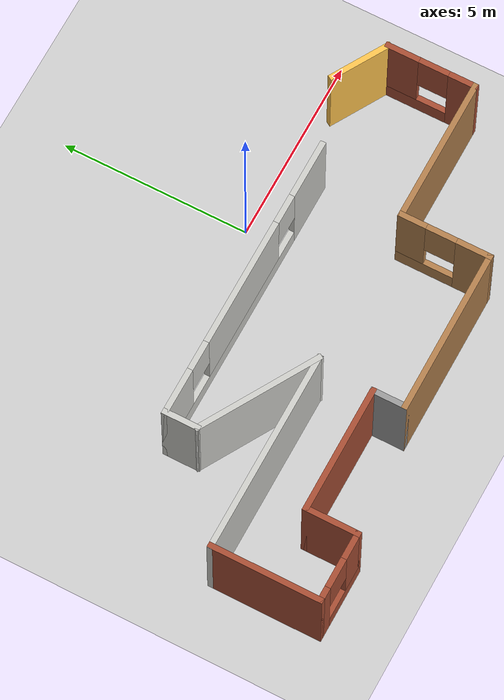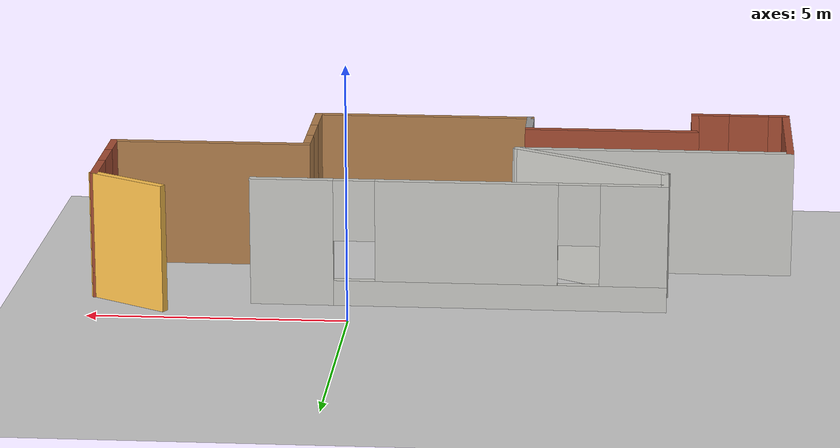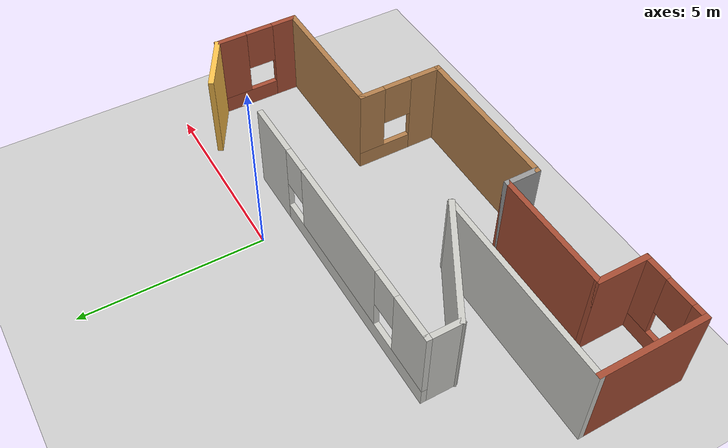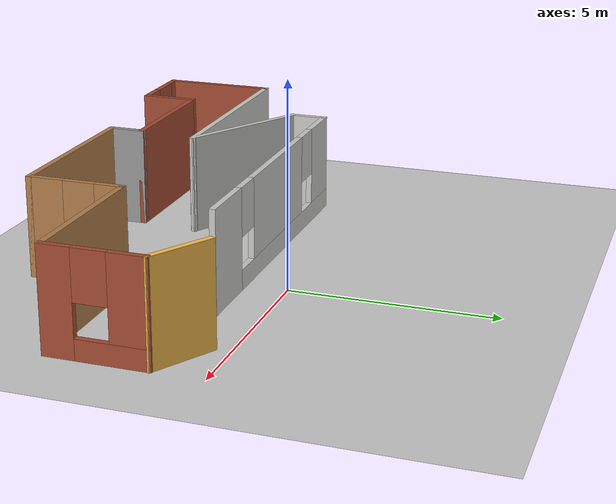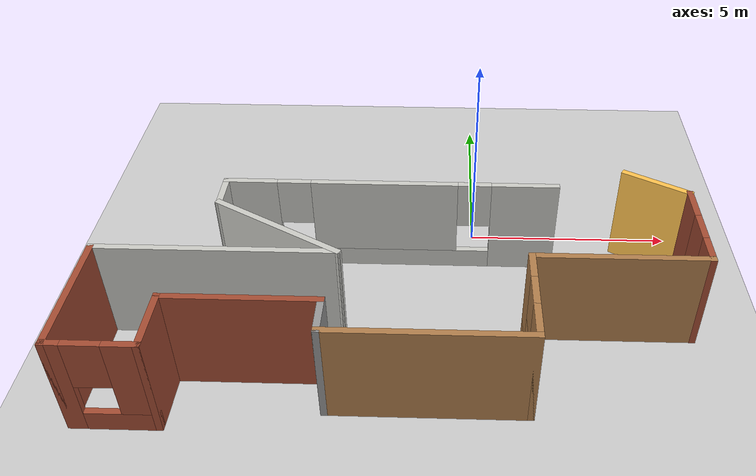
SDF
<sdf version="1.6">
 <world name="default">
  <light name="sun" type="directional">
   <pose>0 0 10 0 -0 0</pose>
   <diffuse>0.8 0.8 0.8 1</diffuse>
   <specular>0.2 0.2 0.2 1</specular>
   <attenuation>
    <range>1000</range>
    <constant>0.9</constant>
    <linear>0.01</linear>
    <quadratic>0.001</quadratic>
   </attenuation>
   <direction>-0.5 0.1 -0.9</direction>
  </light>
  <model name="ground_plane">
   <static>1</static>
   <link name="link">
    <collision name="collision">
     <geometry><plane><normal>0 0 1</normal><size>100 100</size></plane></geometry>
     <surface>
      <contact><collide_bitmask>65535</collide_bitmask></contact>
      <friction><ode><mu>100</mu><mu2>50</mu2></ode></friction>
     </surface>
    </collision>
    <visual name="visual">
     <cast_shadows>0</cast_shadows>
     <geometry><plane><normal>0 0 1</normal><size>100 100</size></plane></geometry>
     <material>
      <script><uri>file://media/materials/scripts/gazebo.material</uri><name>Gazebo/Grey</name></script>
     </material>
    </visual>
   </link>
  </model>
  <gravity>0 0 -9.8</gravity>
  <magnetic_field>6e-06 2.3e-05 -4.2e-05</magnetic_field>
  <atmosphere type="adiabatic"/>
  <physics name="default_physics" default="0" type="ode">
   <max_step_size>0.001</max_step_size>
   <real_time_factor>1</real_time_factor>
   <real_time_update_rate>1000</real_time_update_rate>
  </physics>
  <scene><ambient>0.4 0.4 0.4 1</ambient><background>0.7 0.7 0.7 1</background><shadows>1</shadows></scene>
  <spherical_coordinates>
   <surface_model>EARTH_WGS84</surface_model>
   <latitude_deg>0</latitude_deg>
   <longitude_deg>0</longitude_deg>
   <elevation>0</elevation>
   <heading_deg>0</heading_deg>
  </spherical_coordinates>
  <model name="tore.world">
   <pose>-1.69459 -3.41827 0 0 -0 0</pose>
   <link name="Wall_10">
    <collision name="Wall_10_Collision">
     <geometry><box><size>1.5 0.15 2.5</size></box></geometry>
     <pose>0 0 1.25 0 -0 0</pose>
    </collision>
    <visual name="Wall_10_Visual">
     <pose>0 0 1.25 0 -0 0</pose>
     <geometry><box><size>1.5 0.15 2.5</size></box></geometry>
     <material>
      <script><uri>file://media/materials/scripts/gazebo.material</uri><name>Gazebo/Bricks</name></script>
      <ambient>0.435294 0.796078 0.67451 1</ambient>
     </material>
     <meta><layer>0</layer></meta>
    </visual>
    <pose>-4.86373 -2.33873 0 0 -0 1.5708</pose>
   </link>
   <link name="Wall_11">
    <collision name="Wall_11_Collision">
     <geometry><box><size>3.5 0.15 2.5</size></box></geometry>
     <pose>0 0 1.25 0 -0 0</pose>
    </collision>
    <visual name="Wall_11_Visual">
     <pose>0 0 1.25 0 -0 0</pose>
     <geometry><box><size>3.5 0.15 2.5</size></box></geometry>
     <material>
      <script><uri>file://media/materials/scripts/gazebo.material</uri><name>Gazebo/Bricks</name></script>
      <ambient>1 1 1 1</ambient>
     </material>
     <meta><layer>0</layer></meta>
    </visual>
    <pose>-3.18873 -1.66373 0 0 -0 0</pose>
   </link>
   <link name="Wall_12">
    <collision name="Wall_12_Collision">
     <geometry><box><size>1 0.15 2.5</size></box></geometry>
     <pose>0 0 1.25 0 -0 0</pose>
    </collision>
    <visual name="Wall_12_Visual">
     <pose>0 0 1.25 0 -0 0</pose>
     <geometry><box><size>1 0.15 2.5</size></box></geometry>
     <material>
      <script><uri>file://media/materials/scripts/gazebo.material</uri><name>Gazebo/Grey</name></script>
      <ambient>1 1 1 1</ambient>
     </material>
     <meta><layer>0</layer></meta>
    </visual>
    <pose>-1.51373 -2.08873 0 0 0 -1.5708</pose>
   </link>
   <link name="Wall_13">
    <collision name="Wall_13_Collision">
     <geometry><box><size>4.5 0.15 2.5</size></box></geometry>
     <pose>0 0 1.25 0 -0 0</pose>
    </collision>
    <visual name="Wall_13_Visual">
     <pose>0 0 1.25 0 -0 0</pose>
     <geometry><box><size>4.5 0.15 2.5</size></box></geometry>
     <material>
      <script><uri>file://media/materials/scripts/gazebo.material</uri><name>Gazebo/Wood</name></script>
      <ambient>0.435294 0.796078 0.67451 1</ambient>
     </material>
     <meta><layer>0</layer></meta>
    </visual>
    <pose>0.661274 -2.51373 0 0 -0 0</pose>
   </link>
   <link name="Wall_14">
    <pose>2.83627 -1.33873 0 0 -0 1.5708</pose>
    <visual name="Wall_14_Visual_0">
     <pose>-0.77475 0 1.25 0 -0 0</pose>
     <geometry><box><size>0.9505 0.15 2.5</size></box></geometry>
     <material>
      <script><uri>file://media/materials/scripts/gazebo.material</uri><name>Gazebo/Wood</name></script>
      <ambient>1 1 1 1</ambient>
     </material>
     <meta><layer>0</layer></meta>
    </visual>
    <collision name="Wall_14_Collision_0">
     <geometry><box><size>0.9505 0.15 2.5</size></box></geometry>
     <pose>-0.77475 0 1.25 0 -0 0</pose>
    </collision>
    <visual name="Wall_14_Visual_1">
     <pose>0.47525 0 0.25 0 -0 0</pose>
     <geometry><box><size>1.5495 0.15 0.5</size></box></geometry>
     <material>
      <script><uri>file://media/materials/scripts/gazebo.material</uri><name>Gazebo/Wood</name></script>
      <ambient>1 1 1 1</ambient>
     </material>
     <meta><layer>0</layer></meta>
    </visual>
    <collision name="Wall_14_Collision_1">
     <geometry><box><size>1.5495 0.15 0.5</size></box></geometry>
     <pose>0.47525 0 0.25 0 -0 0</pose>
    </collision>
    <visual name="Wall_14_Visual_2">
     <pose>0.87525 0 1.5 0 -0 0</pose>
     <geometry><box><size>0.7495 0.15 2</size></box></geometry>
     <material>
      <script><uri>file://media/materials/scripts/gazebo.material</uri><name>Gazebo/Wood</name></script>
      <ambient>1 1 1 1</ambient>
     </material>
     <meta><layer>0</layer></meta>
    </visual>
    <collision name="Wall_14_Collision_2">
     <geometry><box><size>0.7495 0.15 2</size></box></geometry>
     <pose>0.87525 0 1.5 0 -0 0</pose>
    </collision>
    <visual name="Wall_14_Visual_3">
     <pose>0.1005 0 1.9 0 -0 0</pose>
     <geometry><box><size>0.8 0.15 1.2</size></box></geometry>
     <material>
      <script><uri>file://media/materials/scripts/gazebo.material</uri><name>Gazebo/Wood</name></script>
      <ambient>1 1 1 1</ambient>
     </material>
     <meta><layer>0</layer></meta>
    </visual>
    <collision name="Wall_14_Collision_3">
     <geometry><box><size>0.8 0.15 1.2</size></box></geometry>
     <pose>0.1005 0 1.9 0 -0 0</pose>
    </collision>
   </link>
   <link name="Wall_15">
    <collision name="Wall_15_Collision">
     <geometry><box><size>4 0.15 2.5</size></box></geometry>
     <pose>0 0 1.25 0 -0 0</pose>
    </collision>
    <visual name="Wall_15_Visual">
     <pose>0 0 1.25 0 -0 0</pose>
     <geometry><box><size>4 0.15 2.5</size></box></geometry>
     <material>
      <script><uri>file://media/materials/scripts/gazebo.material</uri><name>Gazebo/Wood</name></script>
      <ambient>1 0.764706 0.305882 1</ambient>
     </material>
     <meta><layer>0</layer></meta>
    </visual>
    <pose>4.76127 -0.163726 0 0 -0 0</pose>
   </link>
   <link name="Wall_16">
    <pose>6.68627 1.01127 0 0 -0 1.5708</pose>
    <visual name="Wall_16_Visual_0">
     <pose>-0.863 0 1.25 0 -0 0</pose>
     <geometry><box><size>0.774 0.15 2.5</size></box></geometry>
     <material>
      <script><uri>file://media/materials/scripts/gazebo.material</uri><name>Gazebo/Bricks</name></script>
      <ambient>1 1 1 1</ambient>
     </material>
     <meta><layer>0</layer></meta>
    </visual>
    <collision name="Wall_16_Collision_0">
     <geometry><box><size>0.774 0.15 2.5</size></box></geometry>
     <pose>-0.863 0 1.25 0 -0 0</pose>
    </collision>
    <visual name="Wall_16_Visual_1">
     <pose>0.387 0 0.25 0 -0 0</pose>
     <geometry><box><size>1.726 0.15 0.5</size></box></geometry>
     <material>
      <script><uri>file://media/materials/scripts/gazebo.material</uri><name>Gazebo/Bricks</name></script>
      <ambient>1 1 1 1</ambient>
     </material>
     <meta><layer>0</layer></meta>
    </visual>
    <collision name="Wall_16_Collision_1">
     <geometry><box><size>1.726 0.15 0.5</size></box></geometry>
     <pose>0.387 0 0.25 0 -0 0</pose>
    </collision>
    <visual name="Wall_16_Visual_2">
     <pose>0.787 0 1.5 0 -0 0</pose>
     <geometry><box><size>0.926 0.15 2</size></box></geometry>
     <material>
      <script><uri>file://media/materials/scripts/gazebo.material</uri><name>Gazebo/Bricks</name></script>
      <ambient>1 1 1 1</ambient>
     </material>
     <meta><layer>0</layer></meta>
    </visual>
    <collision name="Wall_16_Collision_2">
     <geometry><box><size>0.926 0.15 2</size></box></geometry>
     <pose>0.787 0 1.5 0 -0 0</pose>
    </collision>
    <visual name="Wall_16_Visual_3">
     <pose>-0.076 0 1.9 0 -0 0</pose>
     <geometry><box><size>0.8 0.15 1.2</size></box></geometry>
     <material>
      <script><uri>file://media/materials/scripts/gazebo.material</uri><name>Gazebo/Bricks</name></script>
      <ambient>1 1 1 1</ambient>
     </material>
     <meta><layer>0</layer></meta>
    </visual>
    <collision name="Wall_16_Collision_3">
     <geometry><box><size>0.8 0.15 1.2</size></box></geometry>
     <pose>-0.076 0 1.9 0 -0 0</pose>
    </collision>
   </link>
   <link name="Wall_17">
    <collision name="Wall_17_Collision">
     <geometry><box><size>1.75 0.15 2.5</size></box></geometry>
     <pose>0 0 1.25 0 -0 0</pose>
    </collision>
    <visual name="Wall_17_Visual">
     <pose>0 0 1.25 0 -0 0</pose>
     <geometry><box><size>1.75 0.15 2.5</size></box></geometry>
     <material>
      <script><uri>file://media/materials/scripts/gazebo.material</uri><name>Gazebo/Grey</name></script>
      <ambient>1 0.764706 0.305882 1</ambient>
     </material>
     <meta><layer>0</layer></meta>
    </visual>
    <pose>5.99345 2.58627 0 0 -0 2.61799</pose>
   </link>
   <link name="Wall_4">
    <pose>-0.339911 2.36127 0 0 -0 3.14159</pose>
    <visual name="Wall_4_Visual_0">
     <pose>-3.1965 0 1.25 0 -0 0</pose>
     <geometry><box><size>1.607 0.15 2.5</size></box></geometry>
     <material>
      <script><uri>file://media/materials/scripts/gazebo.material</uri><name>Gazebo/CeilingTiled</name></script>
      <ambient>1 1 1 1</ambient>
     </material>
     <meta><layer>0</layer></meta>
    </visual>
    <collision name="Wall_4_Collision_0">
     <geometry><box><size>1.607 0.15 2.5</size></box></geometry>
     <pose>-3.1965 0 1.25 0 -0 0</pose>
    </collision>
    <visual name="Wall_4_Visual_1">
     <pose>0.8035 0 0.25 0 -0 0</pose>
     <geometry><box><size>6.393 0.15 0.5</size></box></geometry>
     <material>
      <script><uri>file://media/materials/scripts/gazebo.material</uri><name>Gazebo/CeilingTiled</name></script>
      <ambient>1 1 1 1</ambient>
     </material>
     <meta><layer>0</layer></meta>
    </visual>
    <collision name="Wall_4_Collision_1">
     <geometry><box><size>6.393 0.15 0.5</size></box></geometry>
     <pose>0.8035 0 0.25 0 -0 0</pose>
    </collision>
    <visual name="Wall_4_Visual_2">
     <pose>0.1575 0 1.5 0 -0 0</pose>
     <geometry><box><size>3.501 0.15 2</size></box></geometry>
     <material>
      <script><uri>file://media/materials/scripts/gazebo.material</uri><name>Gazebo/CeilingTiled</name></script>
      <ambient>1 1 1 1</ambient>
     </material>
     <meta><layer>0</layer></meta>
    </visual>
    <collision name="Wall_4_Collision_2">
     <geometry><box><size>3.501 0.15 2</size></box></geometry>
     <pose>0.1575 0 1.5 0 -0 0</pose>
    </collision>
    <visual name="Wall_4_Visual_3">
     <pose>3.354 0 1.5 0 -0 0</pose>
     <geometry><box><size>1.292 0.15 2</size></box></geometry>
     <material>
      <script><uri>file://media/materials/scripts/gazebo.material</uri><name>Gazebo/CeilingTiled</name></script>
      <ambient>1 1 1 1</ambient>
     </material>
     <meta><layer>0</layer></meta>
    </visual>
    <collision name="Wall_4_Collision_3">
     <geometry><box><size>1.292 0.15 2</size></box></geometry>
     <pose>3.354 0 1.5 0 -0 0</pose>
    </collision>
    <visual name="Wall_4_Visual_4">
     <pose>-1.993 0 1.9 0 -0 0</pose>
     <geometry><box><size>0.8 0.15 1.2</size></box></geometry>
     <material>
      <script><uri>file://media/materials/scripts/gazebo.material</uri><name>Gazebo/CeilingTiled</name></script>
      <ambient>1 1 1 1</ambient>
     </material>
     <meta><layer>0</layer></meta>
    </visual>
    <collision name="Wall_4_Collision_4">
     <geometry><box><size>0.8 0.15 1.2</size></box></geometry>
     <pose>-1.993 0 1.9 0 -0 0</pose>
    </collision>
    <visual name="Wall_4_Visual_5">
     <pose>2.308 0 1.9 0 -0 0</pose>
     <geometry><box><size>0.8 0.15 1.2</size></box></geometry>
     <material>
      <script><uri>file://media/materials/scripts/gazebo.material</uri><name>Gazebo/CeilingTiled</name></script>
      <ambient>1 1 1 1</ambient>
     </material>
     <meta><layer>0</layer></meta>
    </visual>
    <collision name="Wall_4_Collision_5">
     <geometry><box><size>0.8 0.15 1.2</size></box></geometry>
     <pose>2.308 0 1.9 0 -0 0</pose>
    </collision>
   </link>
   <link name="Wall_5">
    <collision name="Wall_5_Collision">
     <geometry><box><size>1 0.15 2.5</size></box></geometry>
     <pose>0 0 1.25 0 -0 0</pose>
    </collision>
    <visual name="Wall_5_Visual">
     <pose>0 0 1.25 0 -0 0</pose>
     <geometry><box><size>1 0.15 2.5</size></box></geometry>
     <material>
      <script><uri>file://media/materials/scripts/gazebo.material</uri><name>Gazebo/CeilingTiled</name></script>
      <ambient>1 1 1 1</ambient>
     </material>
     <meta><layer>0</layer></meta>
    </visual>
    <pose>-4.26491 1.93627 0 0 0 -1.5708</pose>
   </link>
   <link name="Wall_6">
    <collision name="Wall_6_Collision">
     <geometry><box><size>3.5 0.15 2.5</size></box></geometry>
     <pose>0 0 1.25 0 -0 0</pose>
    </collision>
    <visual name="Wall_6_Visual">
     <pose>0 0 1.25 0 -0 0</pose>
     <geometry><box><size>3.5 0.15 2.5</size></box></geometry>
     <material>
      <script><uri>file://media/materials/scripts/gazebo.material</uri><name>Gazebo/CeilingTiled</name></script>
      <ambient>0.921569 0.807843 0.615686 1</ambient>
     </material>
     <meta><layer>0</layer></meta>
    </visual>
    <pose>-2.81432 0.673774 0 0 0 -0.523599</pose>
   </link>
   <link name="Wall_7">
    <collision name="Wall_7_Collision">
     <geometry><box><size>5.5 0.15 2.5</size></box></geometry>
     <pose>0 0 1.25 0 -0 0</pose>
    </collision>
    <visual name="Wall_7_Visual">
     <pose>0 0 1.25 0 -0 0</pose>
     <geometry><box><size>5.5 0.15 2.5</size></box></geometry>
     <material>
      <script><uri>file://media/materials/scripts/gazebo.material</uri><name>Gazebo/CeilingTiled</name></script>
      <ambient>1 1 1 1</ambient>
     </material>
     <meta><layer>0</layer></meta>
    </visual>
    <pose>-4.03873 -0.163726 0 0 -0 3.14159</pose>
   </link>
   <link name="Wall_8">
    <collision name="Wall_8_Collision">
     <geometry><box><size>3 0.15 2.5</size></box></geometry>
     <pose>0 0 1.25 0 -0 0</pose>
    </collision>
    <visual name="Wall_8_Visual">
     <pose>0 0 1.25 0 -0 0</pose>
     <geometry><box><size>3 0.15 2.5</size></box></geometry>
     <material>
      <script><uri>file://media/materials/scripts/gazebo.material</uri><name>Gazebo/Bricks</name></script>
      <ambient>1 1 1 1</ambient>
     </material>
     <meta><layer>0</layer></meta>
    </visual>
    <pose>-6.71373 -1.58873 0 0 0 -1.5708</pose>
   </link>
   <link name="Wall_9">
    <pose>-5.78873 -3.01373 0 0 -0 0</pose>
    <visual name="Wall_9_Visual_0">
     <pose>-0.785593 0 1.25 0 -0 0</pose>
     <geometry><box><size>0.428815 0.15 2.5</size></box></geometry>
     <material>
      <script><uri>file://media/materials/scripts/gazebo.material</uri><name>Gazebo/Bricks</name></script>
      <ambient>0.435294 0.796078 0.67451 1</ambient>
     </material>
     <meta><layer>0</layer></meta>
    </visual>
    <collision name="Wall_9_Collision_0">
     <geometry><box><size>0.428815 0.15 2.5</size></box></geometry>
     <pose>-0.785593 0 1.25 0 -0 0</pose>
    </collision>
    <visual name="Wall_9_Visual_1">
     <pose>0.214407 0 0.25 0 -0 0</pose>
     <geometry><box><size>1.57119 0.15 0.5</size></box></geometry>
     <material>
      <script><uri>file://media/materials/scripts/gazebo.material</uri><name>Gazebo/Bricks</name></script>
      <ambient>0.435294 0.796078 0.67451 1</ambient>
     </material>
     <meta><layer>0</layer></meta>
    </visual>
    <collision name="Wall_9_Collision_1">
     <geometry><box><size>1.57119 0.15 0.5</size></box></geometry>
     <pose>0.214407 0 0.25 0 -0 0</pose>
    </collision>
    <visual name="Wall_9_Visual_2">
     <pose>0.614407 0 1.5 0 -0 0</pose>
     <geometry><box><size>0.771185 0.15 2</size></box></geometry>
     <material>
      <script><uri>file://media/materials/scripts/gazebo.material</uri><name>Gazebo/Bricks</name></script>
      <ambient>0.435294 0.796078 0.67451 1</ambient>
     </material>
     <meta><layer>0</layer></meta>
    </visual>
    <collision name="Wall_9_Collision_2">
     <geometry><box><size>0.771185 0.15 2</size></box></geometry>
     <pose>0.614407 0 1.5 0 -0 0</pose>
    </collision>
    <visual name="Wall_9_Visual_3">
     <pose>-0.171185 0 1.9 0 -0 0</pose>
     <geometry><box><size>0.8 0.15 1.2</size></box></geometry>
     <material>
      <script><uri>file://media/materials/scripts/gazebo.material</uri><name>Gazebo/Bricks</name></script>
      <ambient>0.435294 0.796078 0.67451 1</ambient>
     </material>
     <meta><layer>0</layer></meta>
    </visual>
    <collision name="Wall_9_Collision_3">
     <geometry><box><size>0.8 0.15 1.2</size></box></geometry>
     <pose>-0.171185 0 1.9 0 -0 0</pose>
    </collision>
   </link>
   <static>1</static>
  </model>
  <plugin filename="libcollision_map_creator.so" name="collision_map_creator"/>
 </world>
</sdf>
